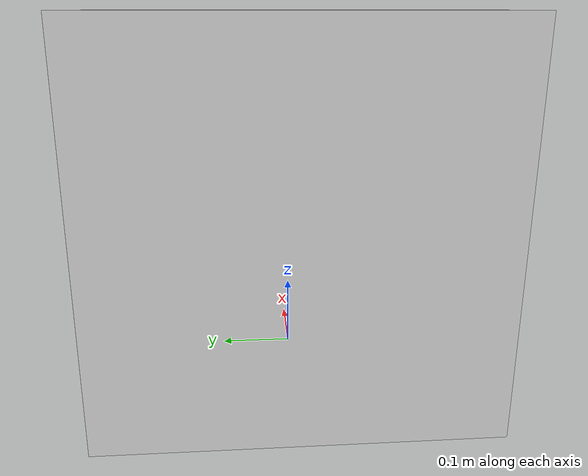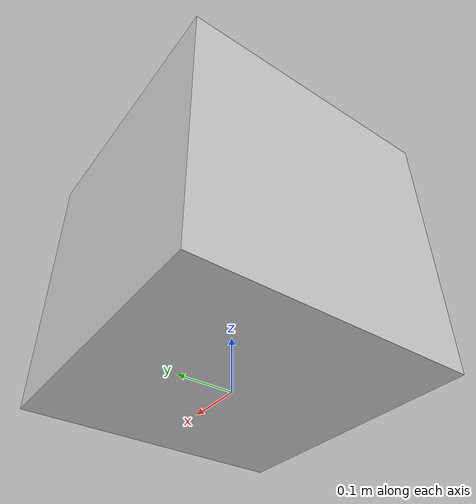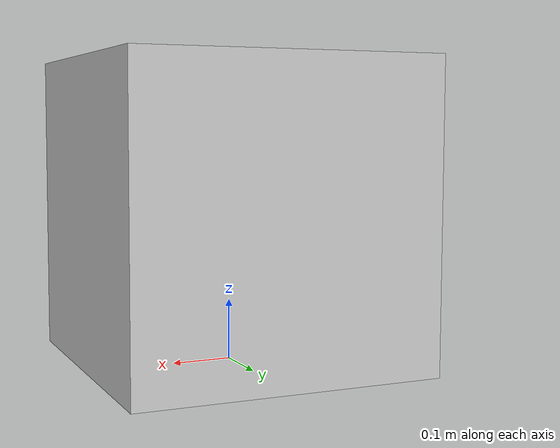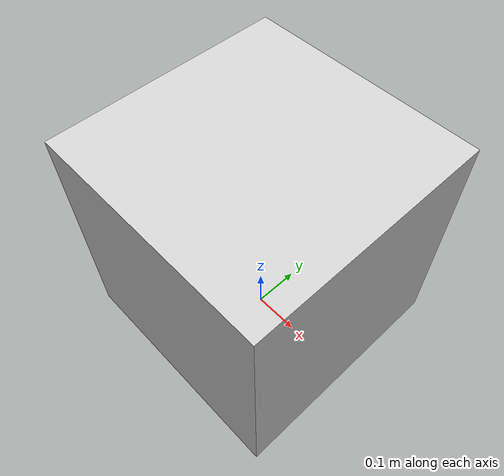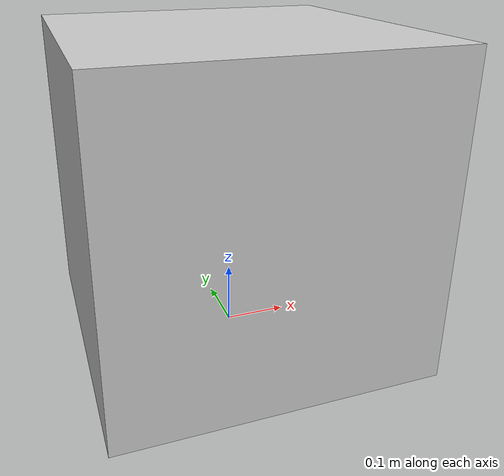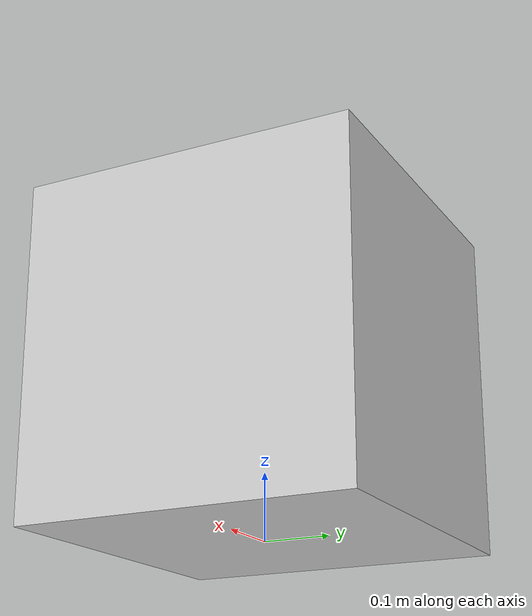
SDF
<?xml version="1.0" ?>
<sdf version="1.6">
  <model name="cube_with_wheels">
    <pose>0 0 0.25 0 0 0</pose> <!-- Position the cube with its base at the ground -->
    <link name="cube_body">
      <pose>0 0 0 0 0 0</pose>

      <!-- Cube's collision and visual -->
      <collision name="collision">
        <geometry>
          <box>
            <size>0.5 0.5 0.5</size>
          </box>
        </geometry>
      </collision>
      <visual name="visual">
        <geometry>
          <box>
            <size>0.5 0.5 0.5</size>
          </box>
        </geometry>
        <material>
          <ambient>0.5 0.5 0.5 1</ambient>
          <diffuse>0.8 0.8 0.8 1</diffuse>
        </material>
      </visual>

      <!-- Inertial properties -->
      <inertial>
        <mass>1.0</mass>
        <inertia>
          <ixx>0.0104</ixx>
          <iyy>0.0104</iyy>
          <izz>0.0104</izz>
          <ixy>0.0</ixy>
          <ixz>0.0</ixz>
          <iyz>0.0</iyz>
        </inertia>
      </inertial>
    </link>

    <!-- Wheels -->
    <!-- Front Left Wheel -->
    <link name="front_left_wheel">
      <collision name="collision">
        <geometry>
          <cylinder>
            <radius>0.05</radius>
            <length>0.04</length>
          </cylinder>
        </geometry>
      </collision>
      <visual name="visual">
        <geometry>
          <cylinder>
            <radius>0.05</radius>
            <length>0.04</length>
          </cylinder>
        </geometry>
        <material>
          <ambient>0 0 1 1</ambient>
          <diffuse>0 0 1 1</diffuse>
        </material>
      </visual>
      <inertial>
        <mass>0.1</mass>
        <inertia>
          <ixx>0.0001</ixx>
          <iyy>0.0001</iyy>
          <izz>0.0001</izz>
          <ixy>0.0</ixy>
          <ixz>0.0</ixz>
          <iyz>0.0</iyz>
        </inertia>
      </inertial>
    </link>
    <joint name="front_left_wheel_joint" type="continuous">
      <parent>cube_body</parent>
      <child>front_left_wheel</child>
      <pose>0.25 0.25 0 0 0 0</pose>
      <axis>
        <xyz>0 0 1</xyz>
      </axis>
    </joint>

    <!-- Front Right Wheel -->
    <link name="front_right_wheel">
      <collision name="collision">
        <geometry>
          <cylinder>
            <radius>0.05</radius>
            <length>0.04</length>
          </cylinder>
        </geometry>
      </collision>
      <visual name="visual">
        <geometry>
          <cylinder>
            <radius>0.05</radius>
            <length>0.04</length>
          </cylinder>
        </geometry>
        <material>
          <ambient>0 0 1 1</ambient>
          <diffuse>0 0 1 1</diffuse>
        </material>
      </visual>
      <inertial>
        <mass>0.1</mass>
        <inertia>
          <ixx>0.0001</ixx>
          <iyy>0.0001</iyy>
          <izz>0.0001</izz>
          <ixy>0.0</ixy>
          <ixz>0.0</ixz>
          <iyz>0.0</iyz>
        </inertia>
      </inertial>
    </link>
    <joint name="front_right_wheel_joint" type="continuous">
      <parent>cube_body</parent>
      <child>front_right_wheel</child>
      <pose>0.25 -0.25 0 0 0 0</pose>
      <axis>
        <xyz>0 0 1</xyz>
      </axis>
    </joint>

    <!-- Rear Left Wheel -->
    <link name="rear_left_wheel">
      <collision name="collision">
        <geometry>
          <cylinder>
            <radius>0.05</radius>
            <length>0.04</length>
          </cylinder>
        </geometry>
      </collision>
      <visual name="visual">
        <geometry>
          <cylinder>
            <radius>0.05</radius>
            <length>0.04</length>
          </cylinder>
        </geometry>
        <material>
          <ambient>0 0 1 1</ambient>
          <diffuse>0 0 1 1</diffuse>
        </material>
      </visual>
      <inertial>
        <mass>0.1</mass>
        <inertia>
          <ixx>0.0001</ixx>
          <iyy>0.0001</iyy>
          <izz>0.0001</izz>
          <ixy>0.0</ixy>
          <ixz>0.0</ixz>
          <iyz>0.0</iyz>
        </inertia>
      </inertial>
    </link>
    <joint name="rear_left_wheel_joint" type="continuous">
      <parent>cube_body</parent>
      <child>rear_left_wheel</child>
      <pose>-0.25 0.25 0 0 0 0</pose>
      <axis>
        <xyz>0 0 1</xyz>
      </axis>
    </joint>

    <!-- Rear Right Wheel -->
    <link name="rear_right_wheel">
      <collision name="collision">
        <geometry>
          <cylinder>
            <radius>0.05</radius>
            <length>0.04</length>
          </cylinder>
        </geometry>
      </collision>
      <visual name="visual">
        <geometry>
          <cylinder>
            <radius>0.05</radius>
            <length>0.04</length>
          </cylinder>
        </geometry>
        <material>
          <ambient>0 0 1 1</ambient>
          <diffuse>0 0 1 1</diffuse>
        </material>
      </visual>
      <inertial>
        <mass>0.1</mass>
        <inertia>
          <ixx>0.0001</ixx>
          <iyy>0.0001</iyy>
          <izz>0.0001</izz>
          <ixy>0.0</ixy>
          <ixz>0.0</ixz>
          <iyz>0.0</iyz>
        </inertia>
      </inertial>
    </link>
    <joint name="rear_right_wheel_joint" type="continuous">
      <parent>cube_body</parent>
      <child>rear_right_wheel</child>
      <pose>-0.25 -0.25 0 0 0 0</pose>
      <axis>
        <xyz>0 0 1</xyz>
      </axis>
    </joint>
  </model>
</sdf>
